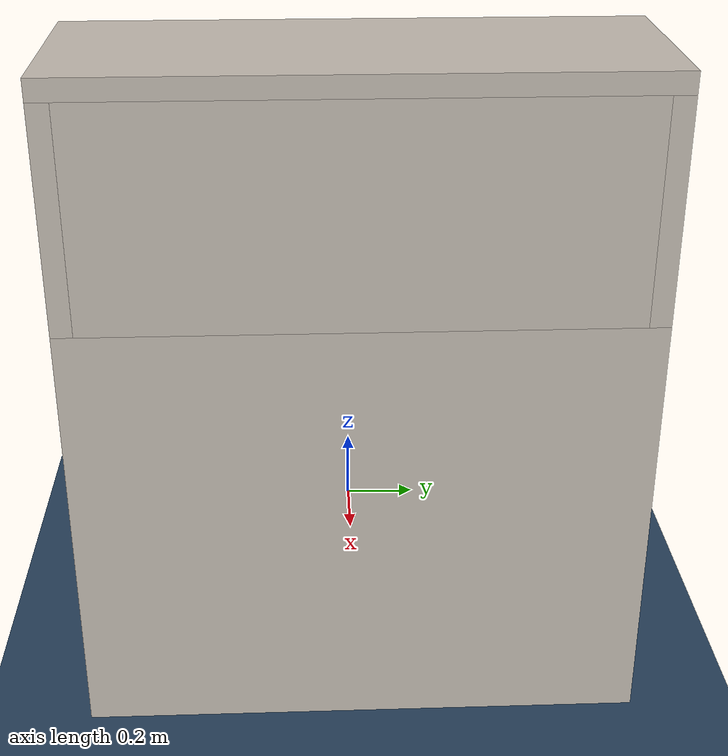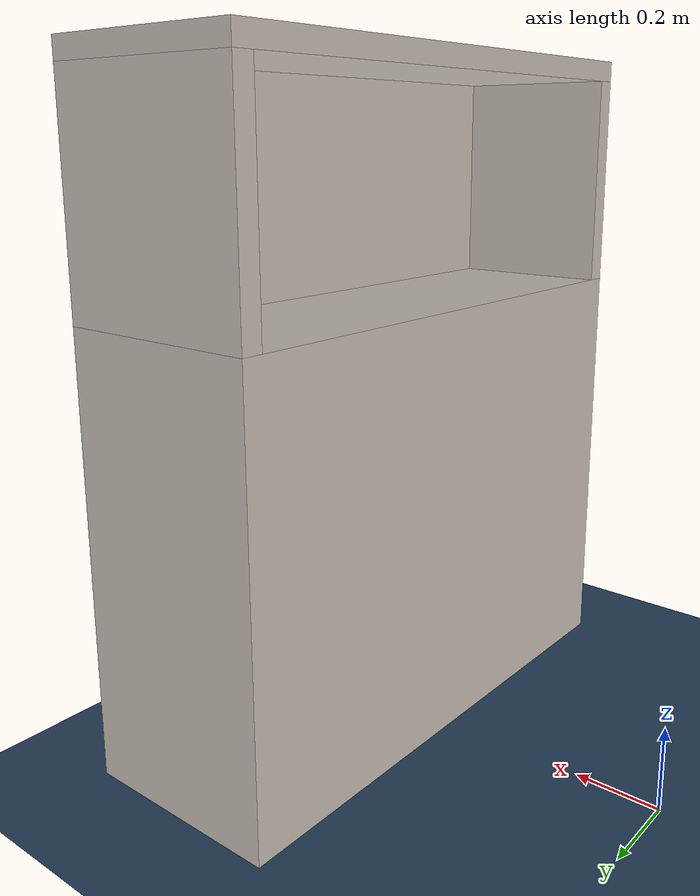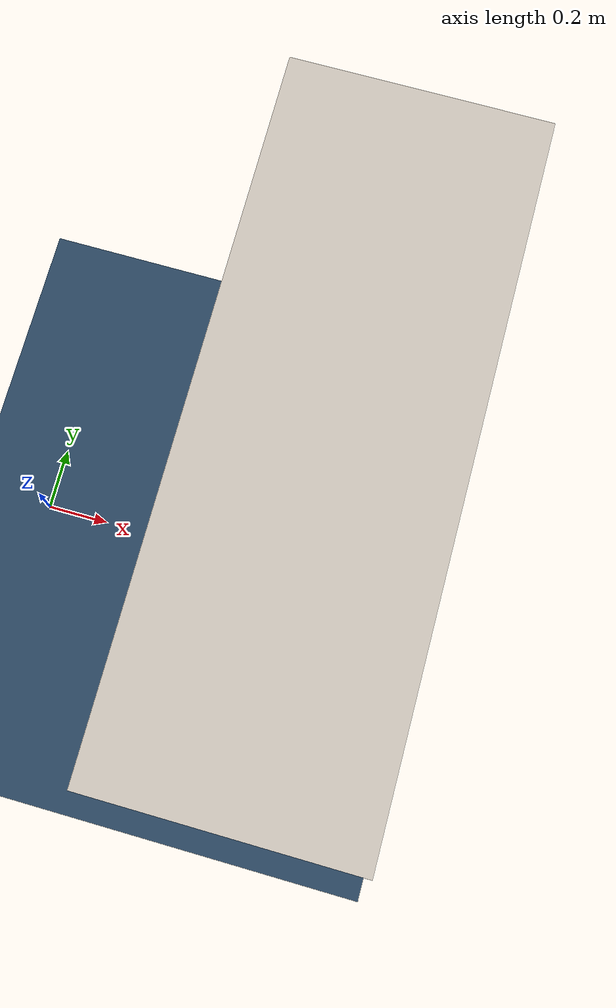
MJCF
<mujoco model="World">

  <compiler angle="radian" balanceinertia="true" inertiafromgeom="true"
    meshdir="../"
    texturedir="../"
    autolimits="true"/>

  <option integrator="Euler" cone="elliptic" solver="CG" noslip_iterations="2">
    <flag warmstart="disable" multiccd="enable"/>
  </option>

  <default>
    <geom density="10"/>
  </default>

  <asset>
    <!-- background -->
    <texture type="skybox" builtin="flat" rgb1="1 1 1" rgb2="0 0 0" width="512" height="512"/>
    <texture name="grid" type="2d" builtin="checker" width="512" height="512" rgb1=".1 .2 .3" rgb2=".2 .3 .4"/>
    <material name="grid" texture="grid" texrepeat="2 2" texuniform="true" specular="0" shininess="0" reflectance="0" emission="1" />
    <!-- ceramic table texture and material-->
    <texture file="models/rs_table/ceramic.png" type="cube" name="tex-ceramic"/>
    <material name="table_ceramic" reflectance="0.0" shininess="0.0" specular="0.2" texrepeat="1 1" texture="tex-ceramic" />
  </asset>

  <worldbody>
    <geom name="floor" size="2 2 0.05" type="plane" material="grid" condim="3"/>
    <light directional="true" pos="-0.5 0.5 3" dir="0 0 -1" castshadow="false" diffuse="1 1 1"/>
    <body name="workspace" pos="0.8 0 0">
      <geom name="shelf_bottom" size="0.25 0.68 0.525" pos="0 0 0.525" type="box" material="table_ceramic"/>
      <geom name="shelf_top" size="0.25 0.68 0.025" pos="0 0 1.595" type="box" material="table_ceramic"/>
      <geom name="shelf_padding_left" size="0.25 0.025 0.26" pos="0 -0.655 1.31" type="box" material="table_ceramic"/>
      <geom name="shelf_padding_right" size="0.25 0.025 0.26" pos="0 0.655 1.31" type="box" material="table_ceramic"/>
      <geom name="shelf_padding_back" size="0.05 0.63 0.26" pos="0.2 0 1.31" type="box" material="table_ceramic"/>
    </body>
  </worldbody>

</mujoco>
